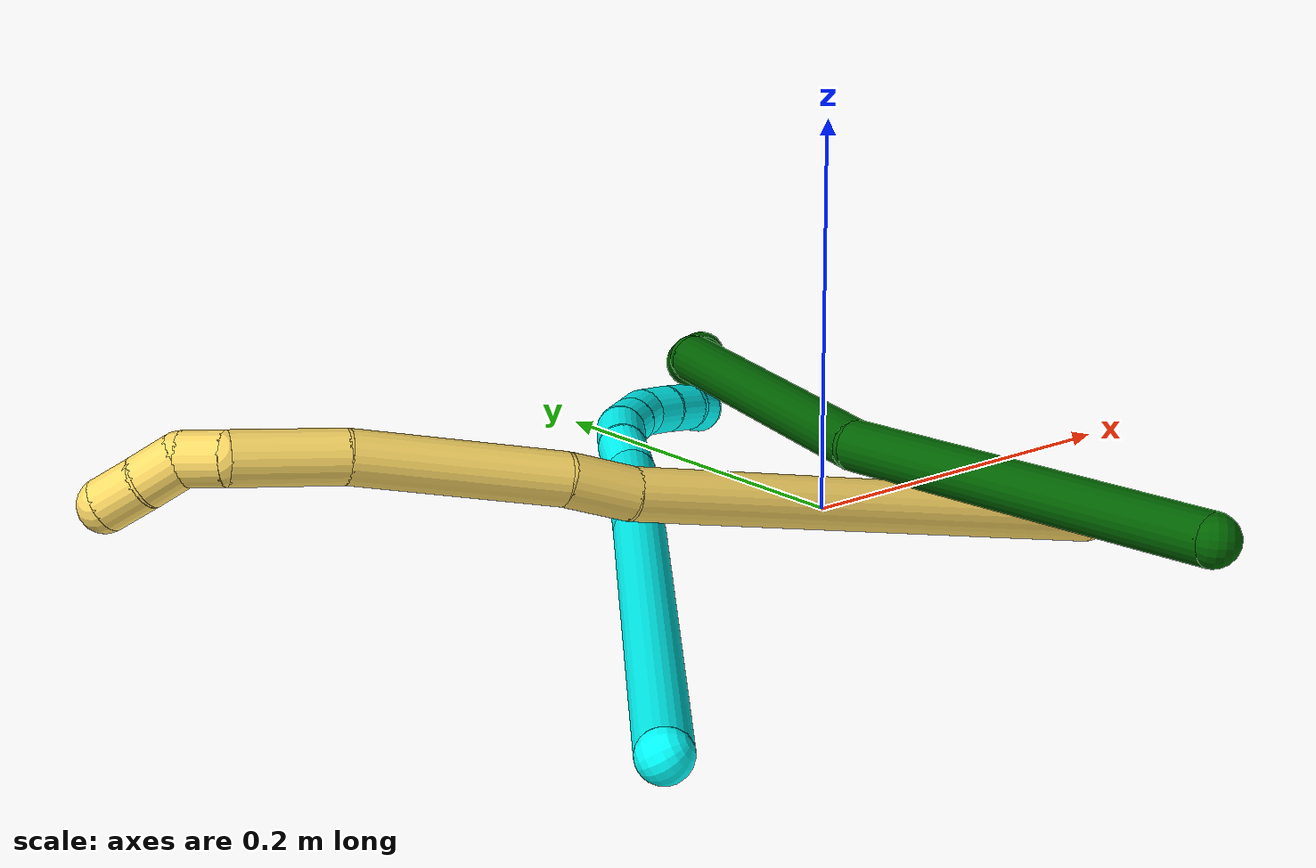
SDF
<sdf version="1.7">
 <world name="default">
  <model name="3">
   <static>0</static>
   <link name="3">
    <collision name="collision-cylinder-e_1_1_4">
     <pose>0.078538 0.093618 -0.020229 -1.78361 0.686818 -0.834195</pose>
     <geometry><cylinder><radius>0.0125</radius><length>0.247724</length></cylinder></geometry>
     <surface>
      <friction><ode><mu>1.16</mu><mu2>1.16</mu2><slip1>0</slip1><slip2>0</slip2></ode></friction>
      <contact><ode><kp>1e+06</kp><kd>1</kd><max_vel>0</max_vel><min_depth>0.001</min_depth></ode></contact>
     </surface>
    </collision>
    <visual name="visual-cylinder-e_1_1_4">
     <pose>0.078538 0.093618 -0.020229 -1.78361 0.686818 -0.834195</pose>
     <geometry><cylinder><radius>0.0125</radius><length>0.247724</length></cylinder></geometry>
     <material><ambient>0.003922 1 0.996078 1</ambient></material>
    </visual>
    <collision name="collision-cylinder-e_2_4_5">
     <pose>0.187927 0.221482 -0.049372 -1.82544 0.717 -0.902674</pose>
     <geometry><cylinder><radius>0.0125</radius><length>0.093894</length></cylinder></geometry>
     <surface>
      <friction><ode><mu>1.16</mu><mu2>1.16</mu2><slip1>0</slip1><slip2>0</slip2></ode></friction>
      <contact><ode><kp>1e+06</kp><kd>1</kd><max_vel>0</max_vel><min_depth>0.001</min_depth></ode></contact>
     </surface>
    </collision>
    <visual name="visual-cylinder-e_2_4_5">
     <pose>0.187927 0.221482 -0.049372 -1.82544 0.717 -0.902674</pose>
     <geometry><cylinder><radius>0.0125</radius><length>0.093894</length></cylinder></geometry>
     <material><ambient>0.003922 1 0.996078 1</ambient></material>
    </visual>
    <collision name="collision-cylinder-e_3_5_6">
     <pose>0.226467 0.268558 -0.061314 -1.80255 0.528135 -0.658378</pose>
     <geometry><cylinder><radius>0.0125</radius><length>0.030521</length></cylinder></geometry>
     <surface>
      <friction><ode><mu>1.16</mu><mu2>1.16</mu2><slip1>0</slip1><slip2>0</slip2></ode></friction>
      <contact><ode><kp>1e+06</kp><kd>1</kd><max_vel>0</max_vel><min_depth>0.001</min_depth></ode></contact>
     </surface>
    </collision>
    <visual name="visual-cylinder-e_3_5_6">
     <pose>0.226467 0.268558 -0.061314 -1.80255 0.528135 -0.658378</pose>
     <geometry><cylinder><radius>0.0125</radius><length>0.030521</length></cylinder></geometry>
     <material><ambient>0.003922 1 0.996078 1</ambient></material>
    </visual>
    <collision name="collision-cylinder-e_4_6_7">
     <pose>0.242831 0.291801 -0.066439 -1.76957 0.684677 -0.821147</pose>
     <geometry><cylinder><radius>0.0125</radius><length>0.02743</length></cylinder></geometry>
     <surface>
      <friction><ode><mu>1.16</mu><mu2>1.16</mu2><slip1>0</slip1><slip2>0</slip2></ode></friction>
      <contact><ode><kp>1e+06</kp><kd>1</kd><max_vel>0</max_vel><min_depth>0.001</min_depth></ode></contact>
     </surface>
    </collision>
    <visual name="visual-cylinder-e_4_6_7">
     <pose>0.242831 0.291801 -0.066439 -1.76957 0.684677 -0.821147</pose>
     <geometry><cylinder><radius>0.0125</radius><length>0.02743</length></cylinder></geometry>
     <material><ambient>0.003922 1 0.996078 1</ambient></material>
    </visual>
    <collision name="collision-cylinder-e_5_7_8">
     <pose>0.259669 0.308036 -0.067935 -1.46769 0.948958 -0.867569</pose>
     <geometry><cylinder><radius>0.0125</radius><length>0.02009</length></cylinder></geometry>
     <surface>
      <friction><ode><mu>1.16</mu><mu2>1.16</mu2><slip1>0</slip1><slip2>0</slip2></ode></friction>
      <contact><ode><kp>1e+06</kp><kd>1</kd><max_vel>0</max_vel><min_depth>0.001</min_depth></ode></contact>
     </surface>
    </collision>
    <visual name="visual-cylinder-e_5_7_8">
     <pose>0.259669 0.308036 -0.067935 -1.46769 0.948958 -0.867569</pose>
     <geometry><cylinder><radius>0.0125</radius><length>0.02009</length></cylinder></geometry>
     <material><ambient>0.003922 1 0.996078 1</ambient></material>
    </visual>
    <collision name="collision-cylinder-e_6_8_9">
     <pose>0.276044 0.319681 -0.066633 -1.45121 0.950455 -0.856383</pose>
     <geometry><cylinder><radius>0.0125</radius><length>0.020182</length></cylinder></geometry>
     <surface>
      <friction><ode><mu>1.16</mu><mu2>1.16</mu2><slip1>0</slip1><slip2>0</slip2></ode></friction>
      <contact><ode><kp>1e+06</kp><kd>1</kd><max_vel>0</max_vel><min_depth>0.001</min_depth></ode></contact>
     </surface>
    </collision>
    <visual name="visual-cylinder-e_6_8_9">
     <pose>0.276044 0.319681 -0.066633 -1.45121 0.950455 -0.856383</pose>
     <geometry><cylinder><radius>0.0125</radius><length>0.020182</length></cylinder></geometry>
     <material><ambient>0.003922 1 0.996078 1</ambient></material>
    </visual>
    <collision name="collision-cylinder-e_7_9_10">
     <pose>0.293091 0.328651 -0.062309 -0.714928 1.07319 -0.437232</pose>
     <geometry><cylinder><radius>0.0125</radius><length>0.020111</length></cylinder></geometry>
     <surface>
      <friction><ode><mu>1.16</mu><mu2>1.16</mu2><slip1>0</slip1><slip2>0</slip2></ode></friction>
      <contact><ode><kp>1e+06</kp><kd>1</kd><max_vel>0</max_vel><min_depth>0.001</min_depth></ode></contact>
     </surface>
    </collision>
    <visual name="visual-cylinder-e_7_9_10">
     <pose>0.293091 0.328651 -0.062309 -0.714928 1.07319 -0.437232</pose>
     <geometry><cylinder><radius>0.0125</radius><length>0.020111</length></cylinder></geometry>
     <material><ambient>0.003922 1 0.996078 1</ambient></material>
    </visual>
    <collision name="collision-cylinder-e_8_10_11">
     <pose>0.310982 0.334972 -0.055856 -0.84295 1.13186 -0.554918</pose>
     <geometry><cylinder><radius>0.0125</radius><length>0.020007</length></cylinder></geometry>
     <surface>
      <friction><ode><mu>1.16</mu><mu2>1.16</mu2><slip1>0</slip1><slip2>0</slip2></ode></friction>
      <contact><ode><kp>1e+06</kp><kd>1</kd><max_vel>0</max_vel><min_depth>0.001</min_depth></ode></contact>
     </surface>
    </collision>
    <visual name="visual-cylinder-e_8_10_11">
     <pose>0.310982 0.334972 -0.055856 -0.84295 1.13186 -0.554918</pose>
     <geometry><cylinder><radius>0.0125</radius><length>0.020007</length></cylinder></geometry>
     <material><ambient>0.003922 1 0.996078 1</ambient></material>
    </visual>
    <collision name="collision-cylinder-e_9_11_2">
     <pose>0.329396 0.341729 -0.05307 -1.58267 1.20512 -1.21624</pose>
     <geometry><cylinder><radius>0.0125</radius><length>0.020042</length></cylinder></geometry>
     <surface>
      <friction><ode><mu>1.16</mu><mu2>1.16</mu2><slip1>0</slip1><slip2>0</slip2></ode></friction>
      <contact><ode><kp>1e+06</kp><kd>1</kd><max_vel>0</max_vel><min_depth>0.001</min_depth></ode></contact>
     </surface>
    </collision>
    <visual name="visual-cylinder-e_9_11_2">
     <pose>0.329396 0.341729 -0.05307 -1.58267 1.20512 -1.21624</pose>
     <geometry><cylinder><radius>0.0125</radius><length>0.020042</length></cylinder></geometry>
     <material><ambient>0.003922 1 0.996078 1</ambient></material>
    </visual>
    <collision name="collision-sphere-2">
     <pose>0.338754 0.345312 -0.053113 0 -0 0</pose>
     <geometry><sphere><radius>0.0125</radius></sphere></geometry>
     <surface>
      <friction><ode><mu>1.16</mu><mu2>1.16</mu2><slip1>0</slip1><slip2>0</slip2></ode></friction>
      <contact><ode><kp>1e+06</kp><kd>1</kd><max_vel>0</max_vel><min_depth>0.001</min_depth></ode></contact>
     </surface>
    </collision>
    <visual name="visual-sphere-2">
     <pose>0.338754 0.345312 -0.053113 0 -0 0</pose>
     <geometry><sphere><radius>0.0125</radius></sphere></geometry>
     <material><ambient>0.003922 1 0.996078 1</ambient></material>
    </visual>
    <collision name="collision-sphere-11">
     <pose>0.320038 0.338146 -0.053028 0 -0 0</pose>
     <geometry><sphere><radius>0.0125</radius></sphere></geometry>
     <surface>
      <friction><ode><mu>1.16</mu><mu2>1.16</mu2><slip1>0</slip1><slip2>0</slip2></ode></friction>
      <contact><ode><kp>1e+06</kp><kd>1</kd><max_vel>0</max_vel><min_depth>0.001</min_depth></ode></contact>
     </surface>
    </collision>
    <visual name="visual-sphere-11">
     <pose>0.320038 0.338146 -0.053028 0 -0 0</pose>
     <geometry><sphere><radius>0.0125</radius></sphere></geometry>
     <material><ambient>0.003922 1 0.996078 1</ambient></material>
    </visual>
    <collision name="collision-sphere-10">
     <pose>0.301927 0.331798 -0.058684 0 -0 0</pose>
     <geometry><sphere><radius>0.0125</radius></sphere></geometry>
     <surface>
      <friction><ode><mu>1.16</mu><mu2>1.16</mu2><slip1>0</slip1><slip2>0</slip2></ode></friction>
      <contact><ode><kp>1e+06</kp><kd>1</kd><max_vel>0</max_vel><min_depth>0.001</min_depth></ode></contact>
     </surface>
    </collision>
    <visual name="visual-sphere-10">
     <pose>0.301927 0.331798 -0.058684 0 -0 0</pose>
     <geometry><sphere><radius>0.0125</radius></sphere></geometry>
     <material><ambient>0.003922 1 0.996078 1</ambient></material>
    </visual>
    <collision name="collision-sphere-9">
     <pose>0.284255 0.325505 -0.065933 0 -0 0</pose>
     <geometry><sphere><radius>0.0125</radius></sphere></geometry>
     <surface>
      <friction><ode><mu>1.16</mu><mu2>1.16</mu2><slip1>0</slip1><slip2>0</slip2></ode></friction>
      <contact><ode><kp>1e+06</kp><kd>1</kd><max_vel>0</max_vel><min_depth>0.001</min_depth></ode></contact>
     </surface>
    </collision>
    <visual name="visual-sphere-9">
     <pose>0.284255 0.325505 -0.065933 0 -0 0</pose>
     <geometry><sphere><radius>0.0125</radius></sphere></geometry>
     <material><ambient>0.003922 1 0.996078 1</ambient></material>
    </visual>
    <collision name="collision-sphere-4">
     <pose>0.157077 0.187236 -0.040458 0 -0 0</pose>
     <geometry><sphere><radius>0.0125</radius></sphere></geometry>
     <surface>
      <friction><ode><mu>1.16</mu><mu2>1.16</mu2><slip1>0</slip1><slip2>0</slip2></ode></friction>
      <contact><ode><kp>1e+06</kp><kd>1</kd><max_vel>0</max_vel><min_depth>0.001</min_depth></ode></contact>
     </surface>
    </collision>
    <visual name="visual-sphere-4">
     <pose>0.157077 0.187236 -0.040458 0 -0 0</pose>
     <geometry><sphere><radius>0.0125</radius></sphere></geometry>
     <material><ambient>0.003922 1 0.996078 1</ambient></material>
    </visual>
    <collision name="collision-sphere-1">
     <geometry><sphere><radius>0.0125</radius></sphere></geometry>
     <surface>
      <friction><ode><mu>1.16</mu><mu2>1.16</mu2><slip1>0</slip1><slip2>0</slip2></ode></friction>
      <contact><ode><kp>1e+06</kp><kd>1</kd><max_vel>0</max_vel><min_depth>0.001</min_depth></ode></contact>
     </surface>
    </collision>
    <visual name="visual-sphere-1">
     <geometry><sphere><radius>0.0125</radius></sphere></geometry>
     <material><ambient>0.003922 1 0.996078 1</ambient></material>
    </visual>
    <collision name="collision-sphere-8">
     <pose>0.267834 0.313857 -0.067333 0 -0 0</pose>
     <geometry><sphere><radius>0.0125</radius></sphere></geometry>
     <surface>
      <friction><ode><mu>1.16</mu><mu2>1.16</mu2><slip1>0</slip1><slip2>0</slip2></ode></friction>
      <contact><ode><kp>1e+06</kp><kd>1</kd><max_vel>0</max_vel><min_depth>0.001</min_depth></ode></contact>
     </surface>
    </collision>
    <visual name="visual-sphere-8">
     <pose>0.267834 0.313857 -0.067333 0 -0 0</pose>
     <geometry><sphere><radius>0.0125</radius></sphere></geometry>
     <material><ambient>0.003922 1 0.996078 1</ambient></material>
    </visual>
    <collision name="collision-sphere-5">
     <pose>0.218777 0.255729 -0.058286 0 -0 0</pose>
     <geometry><sphere><radius>0.0125</radius></sphere></geometry>
     <surface>
      <friction><ode><mu>1.16</mu><mu2>1.16</mu2><slip1>0</slip1><slip2>0</slip2></ode></friction>
      <contact><ode><kp>1e+06</kp><kd>1</kd><max_vel>0</max_vel><min_depth>0.001</min_depth></ode></contact>
     </surface>
    </collision>
    <visual name="visual-sphere-5">
     <pose>0.218777 0.255729 -0.058286 0 -0 0</pose>
     <geometry><sphere><radius>0.0125</radius></sphere></geometry>
     <material><ambient>0.003922 1 0.996078 1</ambient></material>
    </visual>
    <collision name="collision-sphere-6">
     <pose>0.234157 0.281387 -0.064342 0 -0 0</pose>
     <geometry><sphere><radius>0.0125</radius></sphere></geometry>
     <surface>
      <friction><ode><mu>1.16</mu><mu2>1.16</mu2><slip1>0</slip1><slip2>0</slip2></ode></friction>
      <contact><ode><kp>1e+06</kp><kd>1</kd><max_vel>0</max_vel><min_depth>0.001</min_depth></ode></contact>
     </surface>
    </collision>
    <visual name="visual-sphere-6">
     <pose>0.234157 0.281387 -0.064342 0 -0 0</pose>
     <geometry><sphere><radius>0.0125</radius></sphere></geometry>
     <material><ambient>0.003922 1 0.996078 1</ambient></material>
    </visual>
    <collision name="collision-sphere-7">
     <pose>0.251505 0.302216 -0.068537 0 -0 0</pose>
     <geometry><sphere><radius>0.0125</radius></sphere></geometry>
     <surface>
      <friction><ode><mu>1.16</mu><mu2>1.16</mu2><slip1>0</slip1><slip2>0</slip2></ode></friction>
      <contact><ode><kp>1e+06</kp><kd>1</kd><max_vel>0</max_vel><min_depth>0.001</min_depth></ode></contact>
     </surface>
    </collision>
    <visual name="visual-sphere-7">
     <pose>0.251505 0.302216 -0.068537 0 -0 0</pose>
     <geometry><sphere><radius>0.0125</radius></sphere></geometry>
     <material><ambient>0.003922 1 0.996078 1</ambient></material>
    </visual>
    <inertial>
     <pose>0.160359 0.185976 -0.038969 0 -0 0</pose>
     <mass>0.5</mass>
     <inertia>
      <ixx>-5e-05</ixx>
      <ixy>0</ixy>
      <ixz>0</ixz>
      <iyy>-0.000316</iyy>
      <iyz>0</iyz>
      <izz>-0.001897</izz>
     </inertia>
    </inertial>
   </link>
   <pose>-0.284411 -0.211915 0.01149 0.905758 0.614323 0.278047</pose>
  </model>
  <model name="5">
   <static>0</static>
   <link name="5">
    <collision name="collision-cylinder-e_1_1_4">
     <pose>0.000794 0.081684 -0.096116 -2.43719 0.006295 -0.017128</pose>
     <geometry><cylinder><radius>0.0125</radius><length>0.252279</length></cylinder></geometry>
     <surface>
      <friction><ode><mu>1.16</mu><mu2>1.16</mu2><slip1>0</slip1><slip2>0</slip2></ode></friction>
      <contact><ode><kp>1e+06</kp><kd>1</kd><max_vel>0</max_vel><min_depth>0.001</min_depth></ode></contact>
     </surface>
    </collision>
    <visual name="visual-cylinder-e_1_1_4">
     <pose>0.000794 0.081684 -0.096116 -2.43719 0.006295 -0.017128</pose>
     <geometry><cylinder><radius>0.0125</radius><length>0.252279</length></cylinder></geometry>
     <material><ambient>1 0.858824 0.4 1</ambient></material>
    </visual>
    <collision name="collision-cylinder-e_2_4_5">
     <pose>-0.00061 0.173292 -0.205674 -2.50563 -0.130787 0.392783</pose>
     <geometry><cylinder><radius>0.0125</radius><length>0.033705</length></cylinder></geometry>
     <surface>
      <friction><ode><mu>1.16</mu><mu2>1.16</mu2><slip1>0</slip1><slip2>0</slip2></ode></friction>
      <contact><ode><kp>1e+06</kp><kd>1</kd><max_vel>0</max_vel><min_depth>0.001</min_depth></ode></contact>
     </surface>
    </collision>
    <visual name="visual-cylinder-e_2_4_5">
     <pose>-0.00061 0.173292 -0.205674 -2.50563 -0.130787 0.392783</pose>
     <geometry><cylinder><radius>0.0125</radius><length>0.033705</length></cylinder></geometry>
     <material><ambient>1 0.858824 0.4 1</ambient></material>
    </visual>
    <collision name="collision-cylinder-e_3_5_6">
     <pose>-0.008515 0.218821 -0.253821 -2.3434 -0.11429 0.269655</pose>
     <geometry><cylinder><radius>0.0125</radius><length>0.100094</length></cylinder></geometry>
     <surface>
      <friction><ode><mu>1.16</mu><mu2>1.16</mu2><slip1>0</slip1><slip2>0</slip2></ode></friction>
      <contact><ode><kp>1e+06</kp><kd>1</kd><max_vel>0</max_vel><min_depth>0.001</min_depth></ode></contact>
     </surface>
    </collision>
    <visual name="visual-cylinder-e_3_5_6">
     <pose>-0.008515 0.218821 -0.253821 -2.3434 -0.11429 0.269655</pose>
     <geometry><cylinder><radius>0.0125</radius><length>0.100094</length></cylinder></geometry>
     <material><ambient>1 0.858824 0.4 1</ambient></material>
    </visual>
    <collision name="collision-cylinder-e_4_6_7">
     <pose>-0.0153 0.27483 -0.304715 -2.24149 -0.041359 0.085569</pose>
     <geometry><cylinder><radius>0.0125</radius><length>0.052137</length></cylinder></geometry>
     <surface>
      <friction><ode><mu>1.16</mu><mu2>1.16</mu2><slip1>0</slip1><slip2>0</slip2></ode></friction>
      <contact><ode><kp>1e+06</kp><kd>1</kd><max_vel>0</max_vel><min_depth>0.001</min_depth></ode></contact>
     </surface>
    </collision>
    <visual name="visual-cylinder-e_4_6_7">
     <pose>-0.0153 0.27483 -0.304715 -2.24149 -0.041359 0.085569</pose>
     <geometry><cylinder><radius>0.0125</radius><length>0.052137</length></cylinder></geometry>
     <material><ambient>1 0.858824 0.4 1</ambient></material>
    </visual>
    <collision name="collision-cylinder-e_5_7_8">
     <pose>-0.019371 0.304643 -0.323136 -1.80376 -0.300094 0.377941</pose>
     <geometry><cylinder><radius>0.0125</radius><length>0.020245</length></cylinder></geometry>
     <surface>
      <friction><ode><mu>1.16</mu><mu2>1.16</mu2><slip1>0</slip1><slip2>0</slip2></ode></friction>
      <contact><ode><kp>1e+06</kp><kd>1</kd><max_vel>0</max_vel><min_depth>0.001</min_depth></ode></contact>
     </surface>
    </collision>
    <visual name="visual-cylinder-e_5_7_8">
     <pose>-0.019371 0.304643 -0.323136 -1.80376 -0.300094 0.377941</pose>
     <geometry><cylinder><radius>0.0125</radius><length>0.020245</length></cylinder></geometry>
     <material><ambient>1 0.858824 0.4 1</ambient></material>
    </visual>
    <collision name="collision-cylinder-e_6_8_9">
     <pose>-0.020937 0.324056 -0.325025 -1.53642 0.141467 -0.136701</pose>
     <geometry><cylinder><radius>0.0125</radius><length>0.020222</length></cylinder></geometry>
     <surface>
      <friction><ode><mu>1.16</mu><mu2>1.16</mu2><slip1>0</slip1><slip2>0</slip2></ode></friction>
      <contact><ode><kp>1e+06</kp><kd>1</kd><max_vel>0</max_vel><min_depth>0.001</min_depth></ode></contact>
     </surface>
    </collision>
    <visual name="visual-cylinder-e_6_8_9">
     <pose>-0.020937 0.324056 -0.325025 -1.53642 0.141467 -0.136701</pose>
     <geometry><cylinder><radius>0.0125</radius><length>0.020222</length></cylinder></geometry>
     <material><ambient>1 0.858824 0.4 1</ambient></material>
    </visual>
    <collision name="collision-cylinder-e_7_9_2">
     <pose>-0.018976 0.344623 -0.323355 -1.44598 0.05028 -0.044368</pose>
     <geometry><cylinder><radius>0.0125</radius><length>0.021317</length></cylinder></geometry>
     <surface>
      <friction><ode><mu>1.16</mu><mu2>1.16</mu2><slip1>0</slip1><slip2>0</slip2></ode></friction>
      <contact><ode><kp>1e+06</kp><kd>1</kd><max_vel>0</max_vel><min_depth>0.001</min_depth></ode></contact>
     </surface>
    </collision>
    <visual name="visual-cylinder-e_7_9_2">
     <pose>-0.018976 0.344623 -0.323355 -1.44598 0.05028 -0.044368</pose>
     <geometry><cylinder><radius>0.0125</radius><length>0.021317</length></cylinder></geometry>
     <material><ambient>1 0.858824 0.4 1</ambient></material>
    </visual>
    <collision name="collision-sphere-2">
     <pose>-0.01844 0.355185 -0.32203 0 -0 0</pose>
     <geometry><sphere><radius>0.0125</radius></sphere></geometry>
     <surface>
      <friction><ode><mu>1.16</mu><mu2>1.16</mu2><slip1>0</slip1><slip2>0</slip2></ode></friction>
      <contact><ode><kp>1e+06</kp><kd>1</kd><max_vel>0</max_vel><min_depth>0.001</min_depth></ode></contact>
     </surface>
    </collision>
    <visual name="visual-sphere-2">
     <pose>-0.01844 0.355185 -0.32203 0 -0 0</pose>
     <geometry><sphere><radius>0.0125</radius></sphere></geometry>
     <material><ambient>1 0.858824 0.4 1</ambient></material>
    </visual>
    <collision name="collision-sphere-9">
     <pose>-0.019512 0.33406 -0.324681 0 -0 0</pose>
     <geometry><sphere><radius>0.0125</radius></sphere></geometry>
     <surface>
      <friction><ode><mu>1.16</mu><mu2>1.16</mu2><slip1>0</slip1><slip2>0</slip2></ode></friction>
      <contact><ode><kp>1e+06</kp><kd>1</kd><max_vel>0</max_vel><min_depth>0.001</min_depth></ode></contact>
     </surface>
    </collision>
    <visual name="visual-sphere-9">
     <pose>-0.019512 0.33406 -0.324681 0 -0 0</pose>
     <geometry><sphere><radius>0.0125</radius></sphere></geometry>
     <material><ambient>1 0.858824 0.4 1</ambient></material>
    </visual>
    <collision name="collision-sphere-4">
     <pose>0.001588 0.163368 -0.192232 0 -0 0</pose>
     <geometry><sphere><radius>0.0125</radius></sphere></geometry>
     <surface>
      <friction><ode><mu>1.16</mu><mu2>1.16</mu2><slip1>0</slip1><slip2>0</slip2></ode></friction>
      <contact><ode><kp>1e+06</kp><kd>1</kd><max_vel>0</max_vel><min_depth>0.001</min_depth></ode></contact>
     </surface>
    </collision>
    <visual name="visual-sphere-4">
     <pose>0.001588 0.163368 -0.192232 0 -0 0</pose>
     <geometry><sphere><radius>0.0125</radius></sphere></geometry>
     <material><ambient>1 0.858824 0.4 1</ambient></material>
    </visual>
    <collision name="collision-sphere-1">
     <geometry><sphere><radius>0.0125</radius></sphere></geometry>
     <surface>
      <friction><ode><mu>1.16</mu><mu2>1.16</mu2><slip1>0</slip1><slip2>0</slip2></ode></friction>
      <contact><ode><kp>1e+06</kp><kd>1</kd><max_vel>0</max_vel><min_depth>0.001</min_depth></ode></contact>
     </surface>
    </collision>
    <visual name="visual-sphere-1">
     <geometry><sphere><radius>0.0125</radius></sphere></geometry>
     <material><ambient>1 0.858824 0.4 1</ambient></material>
    </visual>
    <collision name="collision-sphere-8">
     <pose>-0.022363 0.314052 -0.325369 0 -0 0</pose>
     <geometry><sphere><radius>0.0125</radius></sphere></geometry>
     <surface>
      <friction><ode><mu>1.16</mu><mu2>1.16</mu2><slip1>0</slip1><slip2>0</slip2></ode></friction>
      <contact><ode><kp>1e+06</kp><kd>1</kd><max_vel>0</max_vel><min_depth>0.001</min_depth></ode></contact>
     </surface>
    </collision>
    <visual name="visual-sphere-8">
     <pose>-0.022363 0.314052 -0.325369 0 -0 0</pose>
     <geometry><sphere><radius>0.0125</radius></sphere></geometry>
     <material><ambient>1 0.858824 0.4 1</ambient></material>
    </visual>
    <collision name="collision-sphere-5">
     <pose>-0.002808 0.183216 -0.219116 0 -0 0</pose>
     <geometry><sphere><radius>0.0125</radius></sphere></geometry>
     <surface>
      <friction><ode><mu>1.16</mu><mu2>1.16</mu2><slip1>0</slip1><slip2>0</slip2></ode></friction>
      <contact><ode><kp>1e+06</kp><kd>1</kd><max_vel>0</max_vel><min_depth>0.001</min_depth></ode></contact>
     </surface>
    </collision>
    <visual name="visual-sphere-5">
     <pose>-0.002808 0.183216 -0.219116 0 -0 0</pose>
     <geometry><sphere><radius>0.0125</radius></sphere></geometry>
     <material><ambient>1 0.858824 0.4 1</ambient></material>
    </visual>
    <collision name="collision-sphere-6">
     <pose>-0.014222 0.254425 -0.288527 0 -0 0</pose>
     <geometry><sphere><radius>0.0125</radius></sphere></geometry>
     <surface>
      <friction><ode><mu>1.16</mu><mu2>1.16</mu2><slip1>0</slip1><slip2>0</slip2></ode></friction>
      <contact><ode><kp>1e+06</kp><kd>1</kd><max_vel>0</max_vel><min_depth>0.001</min_depth></ode></contact>
     </surface>
    </collision>
    <visual name="visual-sphere-6">
     <pose>-0.014222 0.254425 -0.288527 0 -0 0</pose>
     <geometry><sphere><radius>0.0125</radius></sphere></geometry>
     <material><ambient>1 0.858824 0.4 1</ambient></material>
    </visual>
    <collision name="collision-sphere-7">
     <pose>-0.016378 0.295234 -0.320904 0 -0 0</pose>
     <geometry><sphere><radius>0.0125</radius></sphere></geometry>
     <surface>
      <friction><ode><mu>1.16</mu><mu2>1.16</mu2><slip1>0</slip1><slip2>0</slip2></ode></friction>
      <contact><ode><kp>1e+06</kp><kd>1</kd><max_vel>0</max_vel><min_depth>0.001</min_depth></ode></contact>
     </surface>
    </collision>
    <visual name="visual-sphere-7">
     <pose>-0.016378 0.295234 -0.320904 0 -0 0</pose>
     <geometry><sphere><radius>0.0125</radius></sphere></geometry>
     <material><ambient>1 0.858824 0.4 1</ambient></material>
    </visual>
    <inertial>
     <pose>-0.005381 0.165493 -0.184962 0 -0 0</pose>
     <mass>0.5</mass>
     <inertia>
      <ixx>0.001456</ixx>
      <ixy>0</ixy>
      <ixz>0</ixz>
      <iyy>-0.001064</iyy>
      <iyz>0</iyz>
      <izz>-0.000975</izz>
     </inertia>
    </inertial>
   </link>
   <pose>0.063954 -0.119358 0.012547 -2.53593 0.723493 -1.98287</pose>
  </model>
  <model name="6">
   <static>0</static>
   <link name="6">
    <collision name="collision-cylinder-e_1_1_4">
     <pose>0.053982 0.057285 -0.072333 -2.47178 0.529357 -1.32336</pose>
     <geometry><cylinder><radius>0.0125</radius><length>0.213801</length></cylinder></geometry>
     <surface>
      <friction><ode><mu>1.16</mu><mu2>1.16</mu2><slip1>0</slip1><slip2>0</slip2></ode></friction>
      <contact><ode><kp>1e+06</kp><kd>1</kd><max_vel>0</max_vel><min_depth>0.001</min_depth></ode></contact>
     </surface>
    </collision>
    <visual name="visual-cylinder-e_1_1_4">
     <pose>0.053982 0.057285 -0.072333 -2.47178 0.529357 -1.32336</pose>
     <geometry><cylinder><radius>0.0125</radius><length>0.213801</length></cylinder></geometry>
     <material><ambient>0 0.392157 0.003922 1</ambient></material>
    </visual>
    <collision name="collision-cylinder-e_2_4_5">
     <pose>0.154906 0.173068 -0.183608 -2.15813 0.588897 -1.03039</pose>
     <geometry><cylinder><radius>0.0125</radius><length>0.169021</length></cylinder></geometry>
     <surface>
      <friction><ode><mu>1.16</mu><mu2>1.16</mu2><slip1>0</slip1><slip2>0</slip2></ode></friction>
      <contact><ode><kp>1e+06</kp><kd>1</kd><max_vel>0</max_vel><min_depth>0.001</min_depth></ode></contact>
     </surface>
    </collision>
    <visual name="visual-cylinder-e_2_4_5">
     <pose>0.154906 0.173068 -0.183608 -2.15813 0.588897 -1.03039</pose>
     <geometry><cylinder><radius>0.0125</radius><length>0.169021</length></cylinder></geometry>
     <material><ambient>0 0.392157 0.003922 1</ambient></material>
    </visual>
    <collision name="collision-cylinder-e_3_5_6">
     <pose>0.215208 0.240564 -0.223354 -1.6598 0.976267 -1.0519</pose>
     <geometry><cylinder><radius>0.0125</radius><length>0.032257</length></cylinder></geometry>
     <surface>
      <friction><ode><mu>1.16</mu><mu2>1.16</mu2><slip1>0</slip1><slip2>0</slip2></ode></friction>
      <contact><ode><kp>1e+06</kp><kd>1</kd><max_vel>0</max_vel><min_depth>0.001</min_depth></ode></contact>
     </surface>
    </collision>
    <visual name="visual-cylinder-e_3_5_6">
     <pose>0.215208 0.240564 -0.223354 -1.6598 0.976267 -1.0519</pose>
     <geometry><cylinder><radius>0.0125</radius><length>0.032257</length></cylinder></geometry>
     <material><ambient>0 0.392157 0.003922 1</ambient></material>
    </visual>
    <collision name="collision-cylinder-e_4_6_7">
     <pose>0.23671 0.255818 -0.222346 -1.28903 0.896082 -0.693308</pose>
     <geometry><cylinder><radius>0.0125</radius><length>0.020851</length></cylinder></geometry>
     <surface>
      <friction><ode><mu>1.16</mu><mu2>1.16</mu2><slip1>0</slip1><slip2>0</slip2></ode></friction>
      <contact><ode><kp>1e+06</kp><kd>1</kd><max_vel>0</max_vel><min_depth>0.001</min_depth></ode></contact>
     </surface>
    </collision>
    <visual name="visual-cylinder-e_4_6_7">
     <pose>0.23671 0.255818 -0.222346 -1.28903 0.896082 -0.693308</pose>
     <geometry><cylinder><radius>0.0125</radius><length>0.020851</length></cylinder></geometry>
     <material><ambient>0 0.392157 0.003922 1</ambient></material>
    </visual>
    <collision name="collision-cylinder-e_5_7_8">
     <pose>0.253833 0.269005 -0.218535 -1.28982 0.894123 -0.692232</pose>
     <geometry><cylinder><radius>0.0125</radius><length>0.023041</length></cylinder></geometry>
     <surface>
      <friction><ode><mu>1.16</mu><mu2>1.16</mu2><slip1>0</slip1><slip2>0</slip2></ode></friction>
      <contact><ode><kp>1e+06</kp><kd>1</kd><max_vel>0</max_vel><min_depth>0.001</min_depth></ode></contact>
     </surface>
    </collision>
    <visual name="visual-cylinder-e_5_7_8">
     <pose>0.253833 0.269005 -0.218535 -1.28982 0.894123 -0.692232</pose>
     <geometry><cylinder><radius>0.0125</radius><length>0.023041</length></cylinder></geometry>
     <material><ambient>0 0.392157 0.003922 1</ambient></material>
    </visual>
    <collision name="collision-cylinder-e_6_8_9">
     <pose>0.270285 0.283232 -0.216684 -1.59128 0.79708 -0.81184</pose>
     <geometry><cylinder><radius>0.0125</radius><length>0.020884</length></cylinder></geometry>
     <surface>
      <friction><ode><mu>1.16</mu><mu2>1.16</mu2><slip1>0</slip1><slip2>0</slip2></ode></friction>
      <contact><ode><kp>1e+06</kp><kd>1</kd><max_vel>0</max_vel><min_depth>0.001</min_depth></ode></contact>
     </surface>
    </collision>
    <visual name="visual-cylinder-e_6_8_9">
     <pose>0.270285 0.283232 -0.216684 -1.59128 0.79708 -0.81184</pose>
     <geometry><cylinder><radius>0.0125</radius><length>0.020884</length></cylinder></geometry>
     <material><ambient>0 0.392157 0.003922 1</ambient></material>
    </visual>
    <collision name="collision-cylinder-e_7_9_2">
     <pose>0.284814 0.29771 -0.216955 -1.58774 0.776699 -0.788649</pose>
     <geometry><cylinder><radius>0.0125</radius><length>0.020145</length></cylinder></geometry>
     <surface>
      <friction><ode><mu>1.16</mu><mu2>1.16</mu2><slip1>0</slip1><slip2>0</slip2></ode></friction>
      <contact><ode><kp>1e+06</kp><kd>1</kd><max_vel>0</max_vel><min_depth>0.001</min_depth></ode></contact>
     </surface>
    </collision>
    <visual name="visual-cylinder-e_7_9_2">
     <pose>0.284814 0.29771 -0.216955 -1.58774 0.776699 -0.788649</pose>
     <geometry><cylinder><radius>0.0125</radius><length>0.020145</length></cylinder></geometry>
     <material><ambient>0 0.392157 0.003922 1</ambient></material>
    </visual>
    <collision name="collision-sphere-2">
     <pose>0.291874 0.304893 -0.217076 0 -0 0</pose>
     <geometry><sphere><radius>0.0125</radius></sphere></geometry>
     <surface>
      <friction><ode><mu>1.16</mu><mu2>1.16</mu2><slip1>0</slip1><slip2>0</slip2></ode></friction>
      <contact><ode><kp>1e+06</kp><kd>1</kd><max_vel>0</max_vel><min_depth>0.001</min_depth></ode></contact>
     </surface>
    </collision>
    <visual name="visual-sphere-2">
     <pose>0.291874 0.304893 -0.217076 0 -0 0</pose>
     <geometry><sphere><radius>0.0125</radius></sphere></geometry>
     <material><ambient>0 0.392157 0.003922 1</ambient></material>
    </visual>
    <collision name="collision-sphere-9">
     <pose>0.277754 0.290527 -0.216833 0 -0 0</pose>
     <geometry><sphere><radius>0.0125</radius></sphere></geometry>
     <surface>
      <friction><ode><mu>1.16</mu><mu2>1.16</mu2><slip1>0</slip1><slip2>0</slip2></ode></friction>
      <contact><ode><kp>1e+06</kp><kd>1</kd><max_vel>0</max_vel><min_depth>0.001</min_depth></ode></contact>
     </surface>
    </collision>
    <visual name="visual-sphere-9">
     <pose>0.277754 0.290527 -0.216833 0 -0 0</pose>
     <geometry><sphere><radius>0.0125</radius></sphere></geometry>
     <material><ambient>0 0.392157 0.003922 1</ambient></material>
    </visual>
    <collision name="collision-sphere-4">
     <pose>0.107965 0.114569 -0.144666 0 -0 0</pose>
     <geometry><sphere><radius>0.0125</radius></sphere></geometry>
     <surface>
      <friction><ode><mu>1.16</mu><mu2>1.16</mu2><slip1>0</slip1><slip2>0</slip2></ode></friction>
      <contact><ode><kp>1e+06</kp><kd>1</kd><max_vel>0</max_vel><min_depth>0.001</min_depth></ode></contact>
     </surface>
    </collision>
    <visual name="visual-sphere-4">
     <pose>0.107965 0.114569 -0.144666 0 -0 0</pose>
     <geometry><sphere><radius>0.0125</radius></sphere></geometry>
     <material><ambient>0 0.392157 0.003922 1</ambient></material>
    </visual>
    <collision name="collision-sphere-1">
     <geometry><sphere><radius>0.0125</radius></sphere></geometry>
     <surface>
      <friction><ode><mu>1.16</mu><mu2>1.16</mu2><slip1>0</slip1><slip2>0</slip2></ode></friction>
      <contact><ode><kp>1e+06</kp><kd>1</kd><max_vel>0</max_vel><min_depth>0.001</min_depth></ode></contact>
     </surface>
    </collision>
    <visual name="visual-sphere-1">
     <geometry><sphere><radius>0.0125</radius></sphere></geometry>
     <material><ambient>0 0.392157 0.003922 1</ambient></material>
    </visual>
    <collision name="collision-sphere-8">
     <pose>0.262815 0.275936 -0.216534 0 -0 0</pose>
     <geometry><sphere><radius>0.0125</radius></sphere></geometry>
     <surface>
      <friction><ode><mu>1.16</mu><mu2>1.16</mu2><slip1>0</slip1><slip2>0</slip2></ode></friction>
      <contact><ode><kp>1e+06</kp><kd>1</kd><max_vel>0</max_vel><min_depth>0.001</min_depth></ode></contact>
     </surface>
    </collision>
    <visual name="visual-sphere-8">
     <pose>0.262815 0.275936 -0.216534 0 -0 0</pose>
     <geometry><sphere><radius>0.0125</radius></sphere></geometry>
     <material><ambient>0 0.392157 0.003922 1</ambient></material>
    </visual>
    <collision name="collision-sphere-5">
     <pose>0.201846 0.231566 -0.222551 0 -0 0</pose>
     <geometry><sphere><radius>0.0125</radius></sphere></geometry>
     <surface>
      <friction><ode><mu>1.16</mu><mu2>1.16</mu2><slip1>0</slip1><slip2>0</slip2></ode></friction>
      <contact><ode><kp>1e+06</kp><kd>1</kd><max_vel>0</max_vel><min_depth>0.001</min_depth></ode></contact>
     </surface>
    </collision>
    <visual name="visual-sphere-5">
     <pose>0.201846 0.231566 -0.222551 0 -0 0</pose>
     <geometry><sphere><radius>0.0125</radius></sphere></geometry>
     <material><ambient>0 0.392157 0.003922 1</ambient></material>
    </visual>
    <collision name="collision-sphere-6">
     <pose>0.228569 0.249563 -0.224157 0 -0 0</pose>
     <geometry><sphere><radius>0.0125</radius></sphere></geometry>
     <surface>
      <friction><ode><mu>1.16</mu><mu2>1.16</mu2><slip1>0</slip1><slip2>0</slip2></ode></friction>
      <contact><ode><kp>1e+06</kp><kd>1</kd><max_vel>0</max_vel><min_depth>0.001</min_depth></ode></contact>
     </surface>
    </collision>
    <visual name="visual-sphere-6">
     <pose>0.228569 0.249563 -0.224157 0 -0 0</pose>
     <geometry><sphere><radius>0.0125</radius></sphere></geometry>
     <material><ambient>0 0.392157 0.003922 1</ambient></material>
    </visual>
    <collision name="collision-sphere-7">
     <pose>0.244851 0.262074 -0.220535 0 -0 0</pose>
     <geometry><sphere><radius>0.0125</radius></sphere></geometry>
     <surface>
      <friction><ode><mu>1.16</mu><mu2>1.16</mu2><slip1>0</slip1><slip2>0</slip2></ode></friction>
      <contact><ode><kp>1e+06</kp><kd>1</kd><max_vel>0</max_vel><min_depth>0.001</min_depth></ode></contact>
     </surface>
    </collision>
    <visual name="visual-sphere-7">
     <pose>0.244851 0.262074 -0.220535 0 -0 0</pose>
     <geometry><sphere><radius>0.0125</radius></sphere></geometry>
     <material><ambient>0 0.392157 0.003922 1</ambient></material>
    </visual>
    <inertial>
     <pose>0.133664 0.145408 -0.144541 0 -0 0</pose>
     <mass>0.5</mass>
     <inertia>
      <ixx>-0.000609</ixx>
      <ixy>0</ixy>
      <ixz>0</ixz>
      <iyy>-0.000817</iyy>
      <iyz>0</iyz>
      <izz>-0.001398</izz>
     </inertia>
    </inertial>
   </link>
   <pose>-0.035172 -0.278921 0.06326 1.69347 0.921109 0.947947</pose>
  </model>
 </world>
</sdf>
